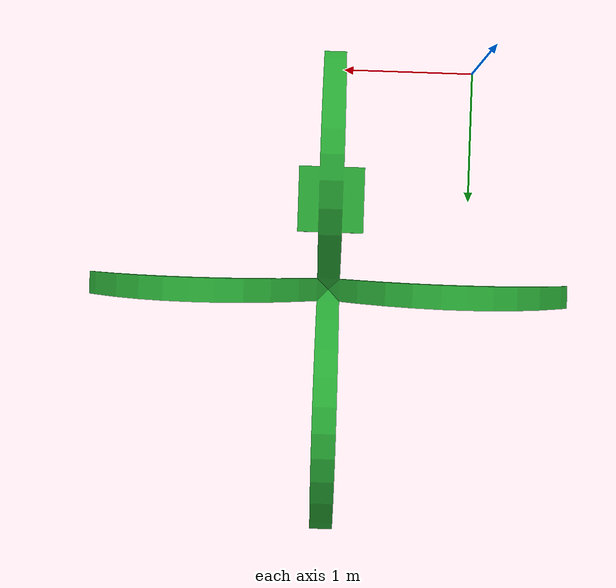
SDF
<?xml version="1.0" ?>
<sdf version="1.5">
  <model name="banana_table">
    <static>true</static>
    <link name="link">

        <inertial>
                <pose>0 0 0 0 0 0</pose>
                <inertia>
                    <ixx>0.0001</ixx>
                    <ixy>0</ixy>
                    <ixz>0</ixz>
                    <iyy>0.0001</iyy>
                    <iyz>0</iyz>
                    <izz>0.0001</izz>
                </inertia>
                <mass>1</mass>
            </inertial>

        <collision name="collision">
        <geometry>
          <mesh>
            <uri>model://banana_table/meshes/banana_table.STL</uri>
            <scale>0.001 0.001 0.001</scale>
          </mesh>
        </geometry>
        <surface>
          <friction>
            <ode>
              <mu>1000</mu>
              <mu2>500</mu2>
            </ode>
          </friction>
        </surface>
      </collision>
      <visual name="visual">
        <cast_shadows>false</cast_shadows>
        <geometry>
          <mesh>
            <uri>model://banana_table/meshes/banana_table.STL</uri>
            <scale>0.001 0.001 0.001</scale>
          </mesh>
        </geometry>
        <material>
          <script>
            <uri>file://media/materials/scripts/gazebo.material</uri>
            <name>Gazebo/Green</name>
          </script>
        </material>
      </visual>
    </link>
  </model>
</sdf>
